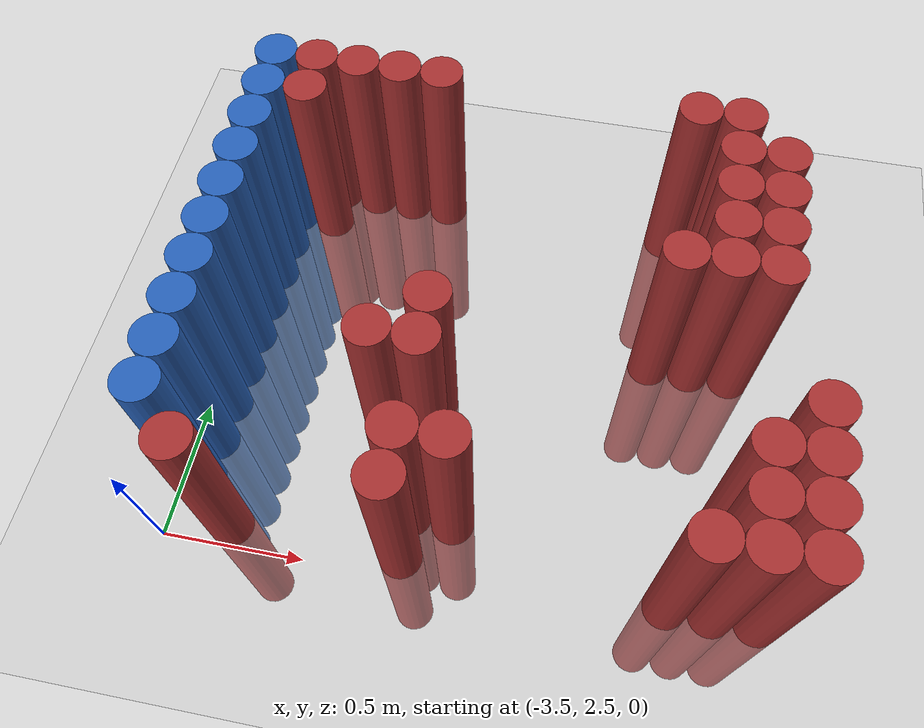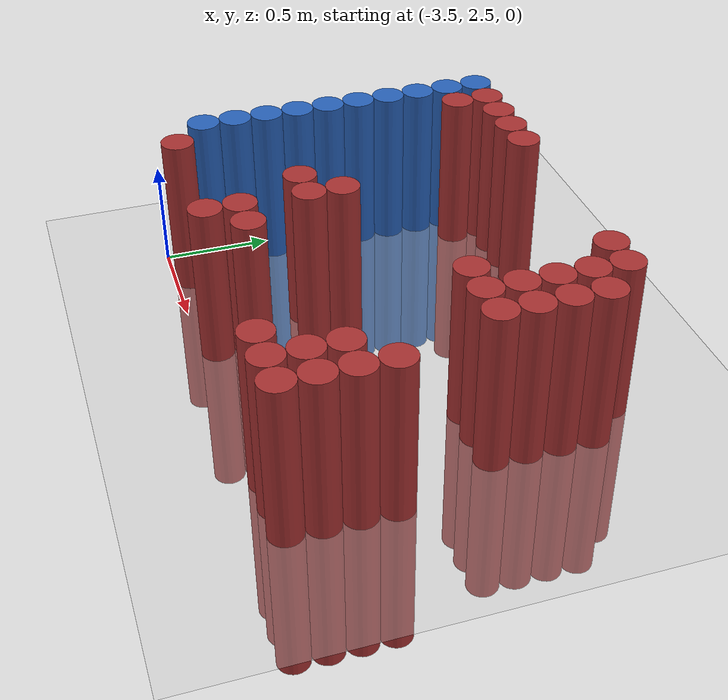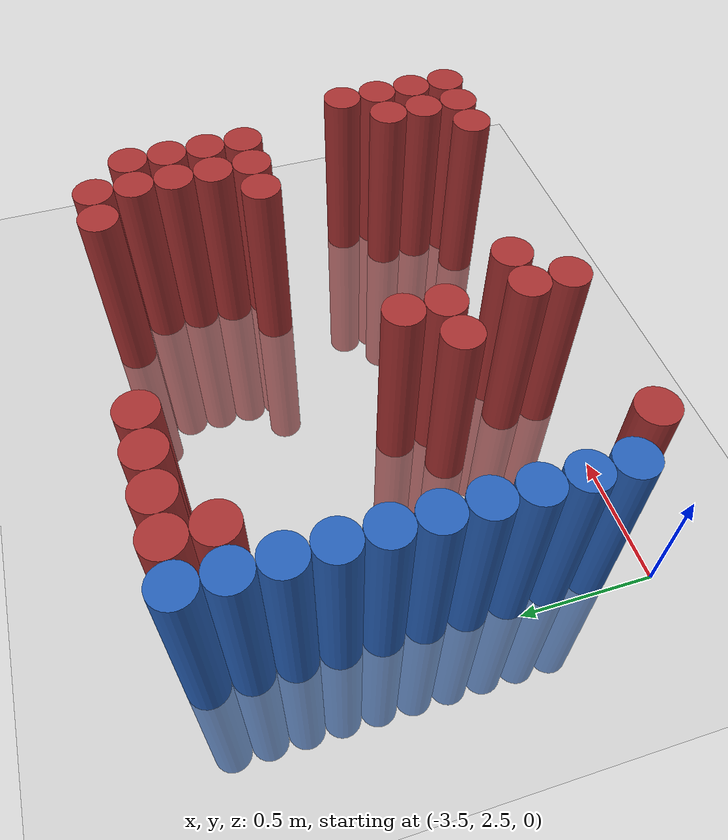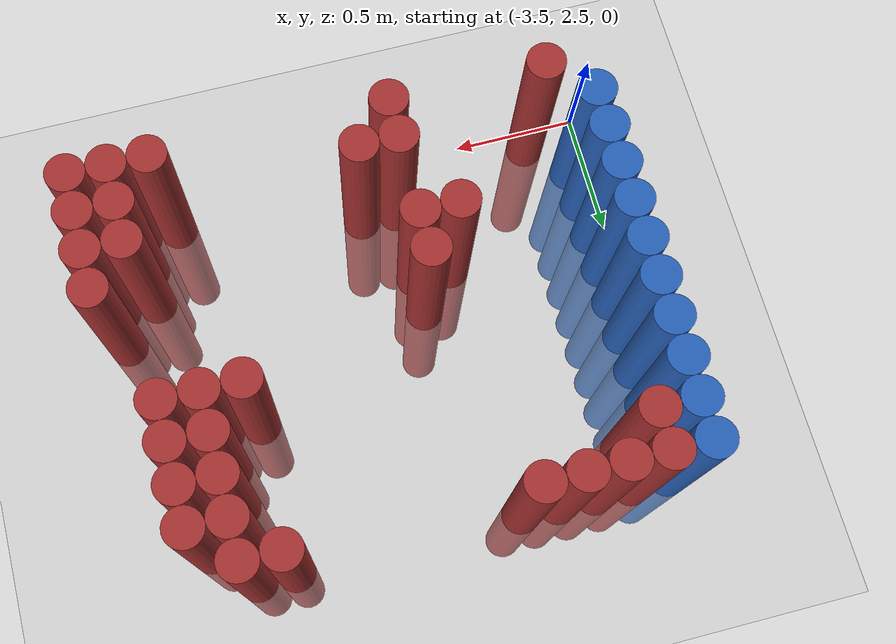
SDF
<sdf version="1.6">
 <world name="default">
  <model name="ground_plane">
   <static>1</static>
   <link name="link">
    <collision name="collision">
     <geometry><plane><normal>0 0 1</normal><size>100 100</size></plane></geometry>
     <surface><friction><ode><mu>100</mu><mu2>50</mu2></ode></friction></surface>
    </collision>
    <visual name="visual">
     <cast_shadows>0</cast_shadows>
     <geometry><plane><normal>0 0 1</normal><size>100 100</size></plane></geometry>
     <material>
      <script><uri>file://media/materials/scripts/gazebo.material</uri><name>Gazebo/Grey</name></script>
     </material>
    </visual>
   </link>
  </model>
  <model name="unit_cylinder_151">
   <static>1</static>
   <pose>-3.425000 2.725000 0.000000 0.000000 0.000000 0.000000</pose>
   <link name="link">
    <inertial>
     <mass>1</mass>
     <inertia><ixx>0.145833</ixx><ixy>0</ixy><ixz>0</ixz><iyy>0.145833</iyy><iyz>0</iyz><izz>0.125</izz></inertia>
    </inertial>
    <collision name="collision">
     <geometry><cylinder><radius>0.075000</radius><length>1.5</length></cylinder></geometry>
    </collision>
    <visual name="visual">
     <geometry><cylinder><radius>0.075000</radius><length>1.5</length></cylinder></geometry>
     <material>
      <ambient>0.152000 0.379000 0.720000 1</ambient>
      <diffuse>0.152000 0.379000 0.720000 1</diffuse>
     </material>
     <material>
      <script><name>Gazebo/Grey</name><uri>file://media/materials/scripts/gazebo.material</uri></script>
     </material>
    </visual>
   </link>
  </model>
  <model name="unit_cylinder_153">
   <static>1</static>
   <pose>-3.425000 2.875000 0.000000 0.000000 0.000000 0.000000</pose>
   <link name="link">
    <inertial>
     <mass>1</mass>
     <inertia><ixx>0.145833</ixx><ixy>0</ixy><ixz>0</ixz><iyy>0.145833</iyy><iyz>0</iyz><izz>0.125</izz></inertia>
    </inertial>
    <collision name="collision">
     <geometry><cylinder><radius>0.075000</radius><length>1.5</length></cylinder></geometry>
    </collision>
    <visual name="visual">
     <geometry><cylinder><radius>0.075000</radius><length>1.5</length></cylinder></geometry>
     <material>
      <ambient>0.152000 0.379000 0.720000 1</ambient>
      <diffuse>0.152000 0.379000 0.720000 1</diffuse>
     </material>
     <material>
      <script><name>Gazebo/Grey</name><uri>file://media/materials/scripts/gazebo.material</uri></script>
     </material>
    </visual>
   </link>
  </model>
  <model name="unit_cylinder_155">
   <static>1</static>
   <pose>-3.425000 3.025000 0.000000 0.000000 0.000000 0.000000</pose>
   <link name="link">
    <inertial>
     <mass>1</mass>
     <inertia><ixx>0.145833</ixx><ixy>0</ixy><ixz>0</ixz><iyy>0.145833</iyy><iyz>0</iyz><izz>0.125</izz></inertia>
    </inertial>
    <collision name="collision">
     <geometry><cylinder><radius>0.075000</radius><length>1.5</length></cylinder></geometry>
    </collision>
    <visual name="visual">
     <geometry><cylinder><radius>0.075000</radius><length>1.5</length></cylinder></geometry>
     <material>
      <ambient>0.152000 0.379000 0.720000 1</ambient>
      <diffuse>0.152000 0.379000 0.720000 1</diffuse>
     </material>
     <material>
      <script><name>Gazebo/Grey</name><uri>file://media/materials/scripts/gazebo.material</uri></script>
     </material>
    </visual>
   </link>
  </model>
  <model name="unit_cylinder_157">
   <static>1</static>
   <pose>-3.425000 3.175000 0.000000 0.000000 0.000000 0.000000</pose>
   <link name="link">
    <inertial>
     <mass>1</mass>
     <inertia><ixx>0.145833</ixx><ixy>0</ixy><ixz>0</ixz><iyy>0.145833</iyy><iyz>0</iyz><izz>0.125</izz></inertia>
    </inertial>
    <collision name="collision">
     <geometry><cylinder><radius>0.075000</radius><length>1.5</length></cylinder></geometry>
    </collision>
    <visual name="visual">
     <geometry><cylinder><radius>0.075000</radius><length>1.5</length></cylinder></geometry>
     <material>
      <ambient>0.152000 0.379000 0.720000 1</ambient>
      <diffuse>0.152000 0.379000 0.720000 1</diffuse>
     </material>
     <material>
      <script><name>Gazebo/Grey</name><uri>file://media/materials/scripts/gazebo.material</uri></script>
     </material>
    </visual>
   </link>
  </model>
  <model name="unit_cylinder_159">
   <static>1</static>
   <pose>-3.425000 3.325000 0.000000 0.000000 0.000000 0.000000</pose>
   <link name="link">
    <inertial>
     <mass>1</mass>
     <inertia><ixx>0.145833</ixx><ixy>0</ixy><ixz>0</ixz><iyy>0.145833</iyy><iyz>0</iyz><izz>0.125</izz></inertia>
    </inertial>
    <collision name="collision">
     <geometry><cylinder><radius>0.075000</radius><length>1.5</length></cylinder></geometry>
    </collision>
    <visual name="visual">
     <geometry><cylinder><radius>0.075000</radius><length>1.5</length></cylinder></geometry>
     <material>
      <ambient>0.152000 0.379000 0.720000 1</ambient>
      <diffuse>0.152000 0.379000 0.720000 1</diffuse>
     </material>
     <material>
      <script><name>Gazebo/Grey</name><uri>file://media/materials/scripts/gazebo.material</uri></script>
     </material>
    </visual>
   </link>
  </model>
  <model name="unit_cylinder_161">
   <static>1</static>
   <pose>-3.425000 3.475000 0.000000 0.000000 0.000000 0.000000</pose>
   <link name="link">
    <inertial>
     <mass>1</mass>
     <inertia><ixx>0.145833</ixx><ixy>0</ixy><ixz>0</ixz><iyy>0.145833</iyy><iyz>0</iyz><izz>0.125</izz></inertia>
    </inertial>
    <collision name="collision">
     <geometry><cylinder><radius>0.075000</radius><length>1.5</length></cylinder></geometry>
    </collision>
    <visual name="visual">
     <geometry><cylinder><radius>0.075000</radius><length>1.5</length></cylinder></geometry>
     <material>
      <ambient>0.152000 0.379000 0.720000 1</ambient>
      <diffuse>0.152000 0.379000 0.720000 1</diffuse>
     </material>
     <material>
      <script><name>Gazebo/Grey</name><uri>file://media/materials/scripts/gazebo.material</uri></script>
     </material>
    </visual>
   </link>
  </model>
  <model name="unit_cylinder_163">
   <static>1</static>
   <pose>-3.425000 3.625000 0.000000 0.000000 0.000000 0.000000</pose>
   <link name="link">
    <inertial>
     <mass>1</mass>
     <inertia><ixx>0.145833</ixx><ixy>0</ixy><ixz>0</ixz><iyy>0.145833</iyy><iyz>0</iyz><izz>0.125</izz></inertia>
    </inertial>
    <collision name="collision">
     <geometry><cylinder><radius>0.075000</radius><length>1.5</length></cylinder></geometry>
    </collision>
    <visual name="visual">
     <geometry><cylinder><radius>0.075000</radius><length>1.5</length></cylinder></geometry>
     <material>
      <ambient>0.152000 0.379000 0.720000 1</ambient>
      <diffuse>0.152000 0.379000 0.720000 1</diffuse>
     </material>
     <material>
      <script><name>Gazebo/Grey</name><uri>file://media/materials/scripts/gazebo.material</uri></script>
     </material>
    </visual>
   </link>
  </model>
  <model name="unit_cylinder_165">
   <static>1</static>
   <pose>-3.425000 3.775000 0.000000 0.000000 0.000000 0.000000</pose>
   <link name="link">
    <inertial>
     <mass>1</mass>
     <inertia><ixx>0.145833</ixx><ixy>0</ixy><ixz>0</ixz><iyy>0.145833</iyy><iyz>0</iyz><izz>0.125</izz></inertia>
    </inertial>
    <collision name="collision">
     <geometry><cylinder><radius>0.075000</radius><length>1.5</length></cylinder></geometry>
    </collision>
    <visual name="visual">
     <geometry><cylinder><radius>0.075000</radius><length>1.5</length></cylinder></geometry>
     <material>
      <ambient>0.152000 0.379000 0.720000 1</ambient>
      <diffuse>0.152000 0.379000 0.720000 1</diffuse>
     </material>
     <material>
      <script><name>Gazebo/Grey</name><uri>file://media/materials/scripts/gazebo.material</uri></script>
     </material>
    </visual>
   </link>
  </model>
  <model name="unit_cylinder_167">
   <static>1</static>
   <pose>-3.425000 3.925000 0.000000 0.000000 0.000000 0.000000</pose>
   <link name="link">
    <inertial>
     <mass>1</mass>
     <inertia><ixx>0.145833</ixx><ixy>0</ixy><ixz>0</ixz><iyy>0.145833</iyy><iyz>0</iyz><izz>0.125</izz></inertia>
    </inertial>
    <collision name="collision">
     <geometry><cylinder><radius>0.075000</radius><length>1.5</length></cylinder></geometry>
    </collision>
    <visual name="visual">
     <geometry><cylinder><radius>0.075000</radius><length>1.5</length></cylinder></geometry>
     <material>
      <ambient>0.152000 0.379000 0.720000 1</ambient>
      <diffuse>0.152000 0.379000 0.720000 1</diffuse>
     </material>
     <material>
      <script><name>Gazebo/Grey</name><uri>file://media/materials/scripts/gazebo.material</uri></script>
     </material>
    </visual>
   </link>
  </model>
  <model name="unit_cylinder_169">
   <static>1</static>
   <pose>-3.425000 4.075000 0.000000 0.000000 0.000000 0.000000</pose>
   <link name="link">
    <inertial>
     <mass>1</mass>
     <inertia><ixx>0.145833</ixx><ixy>0</ixy><ixz>0</ixz><iyy>0.145833</iyy><iyz>0</iyz><izz>0.125</izz></inertia>
    </inertial>
    <collision name="collision">
     <geometry><cylinder><radius>0.075000</radius><length>1.5</length></cylinder></geometry>
    </collision>
    <visual name="visual">
     <geometry><cylinder><radius>0.075000</radius><length>1.5</length></cylinder></geometry>
     <material>
      <ambient>0.152000 0.379000 0.720000 1</ambient>
      <diffuse>0.152000 0.379000 0.720000 1</diffuse>
     </material>
     <material>
      <script><name>Gazebo/Grey</name><uri>file://media/materials/scripts/gazebo.material</uri></script>
     </material>
    </visual>
   </link>
  </model>
  <model name="unit_cylinder_239">
   <static>1</static>
   <pose>-3.425000 2.725000 0.000000 0.000000 0.000000 0.000000</pose>
   <link name="link">
    <inertial>
     <mass>1</mass>
     <inertia><ixx>0.145833</ixx><ixy>0</ixy><ixz>0</ixz><iyy>0.145833</iyy><iyz>0</iyz><izz>0.125</izz></inertia>
    </inertial>
    <collision name="collision">
     <geometry><cylinder><radius>0.075000</radius><length>1.5</length></cylinder></geometry>
    </collision>
    <visual name="visual">
     <geometry><cylinder><radius>0.075000</radius><length>1.5</length></cylinder></geometry>
     <material>
      <ambient>0.152000 0.379000 0.720000 1</ambient>
      <diffuse>0.152000 0.379000 0.720000 1</diffuse>
     </material>
     <material>
      <script><name>Gazebo/Grey</name><uri>file://media/materials/scripts/gazebo.material</uri></script>
     </material>
    </visual>
   </link>
  </model>
  <model name="unit_cylinder_240">
   <static>1</static>
   <pose>-3.425000 2.875000 0.000000 0.000000 0.000000 0.000000</pose>
   <link name="link">
    <inertial>
     <mass>1</mass>
     <inertia><ixx>0.145833</ixx><ixy>0</ixy><ixz>0</ixz><iyy>0.145833</iyy><iyz>0</iyz><izz>0.125</izz></inertia>
    </inertial>
    <collision name="collision">
     <geometry><cylinder><radius>0.075000</radius><length>1.5</length></cylinder></geometry>
    </collision>
    <visual name="visual">
     <geometry><cylinder><radius>0.075000</radius><length>1.5</length></cylinder></geometry>
     <material>
      <ambient>0.152000 0.379000 0.720000 1</ambient>
      <diffuse>0.152000 0.379000 0.720000 1</diffuse>
     </material>
     <material>
      <script><name>Gazebo/Grey</name><uri>file://media/materials/scripts/gazebo.material</uri></script>
     </material>
    </visual>
   </link>
  </model>
  <model name="unit_cylinder_241">
   <static>1</static>
   <pose>-3.425000 3.025000 0.000000 0.000000 0.000000 0.000000</pose>
   <link name="link">
    <inertial>
     <mass>1</mass>
     <inertia><ixx>0.145833</ixx><ixy>0</ixy><ixz>0</ixz><iyy>0.145833</iyy><iyz>0</iyz><izz>0.125</izz></inertia>
    </inertial>
    <collision name="collision">
     <geometry><cylinder><radius>0.075000</radius><length>1.5</length></cylinder></geometry>
    </collision>
    <visual name="visual">
     <geometry><cylinder><radius>0.075000</radius><length>1.5</length></cylinder></geometry>
     <material>
      <ambient>0.152000 0.379000 0.720000 1</ambient>
      <diffuse>0.152000 0.379000 0.720000 1</diffuse>
     </material>
     <material>
      <script><name>Gazebo/Grey</name><uri>file://media/materials/scripts/gazebo.material</uri></script>
     </material>
    </visual>
   </link>
  </model>
  <model name="unit_cylinder_242">
   <static>1</static>
   <pose>-3.425000 3.175000 0.000000 0.000000 0.000000 0.000000</pose>
   <link name="link">
    <inertial>
     <mass>1</mass>
     <inertia><ixx>0.145833</ixx><ixy>0</ixy><ixz>0</ixz><iyy>0.145833</iyy><iyz>0</iyz><izz>0.125</izz></inertia>
    </inertial>
    <collision name="collision">
     <geometry><cylinder><radius>0.075000</radius><length>1.5</length></cylinder></geometry>
    </collision>
    <visual name="visual">
     <geometry><cylinder><radius>0.075000</radius><length>1.5</length></cylinder></geometry>
     <material>
      <ambient>0.152000 0.379000 0.720000 1</ambient>
      <diffuse>0.152000 0.379000 0.720000 1</diffuse>
     </material>
     <material>
      <script><name>Gazebo/Grey</name><uri>file://media/materials/scripts/gazebo.material</uri></script>
     </material>
    </visual>
   </link>
  </model>
  <model name="unit_cylinder_243">
   <static>1</static>
   <pose>-3.425000 3.325000 0.000000 0.000000 0.000000 0.000000</pose>
   <link name="link">
    <inertial>
     <mass>1</mass>
     <inertia><ixx>0.145833</ixx><ixy>0</ixy><ixz>0</ixz><iyy>0.145833</iyy><iyz>0</iyz><izz>0.125</izz></inertia>
    </inertial>
    <collision name="collision">
     <geometry><cylinder><radius>0.075000</radius><length>1.5</length></cylinder></geometry>
    </collision>
    <visual name="visual">
     <geometry><cylinder><radius>0.075000</radius><length>1.5</length></cylinder></geometry>
     <material>
      <ambient>0.152000 0.379000 0.720000 1</ambient>
      <diffuse>0.152000 0.379000 0.720000 1</diffuse>
     </material>
     <material>
      <script><name>Gazebo/Grey</name><uri>file://media/materials/scripts/gazebo.material</uri></script>
     </material>
    </visual>
   </link>
  </model>
  <model name="unit_cylinder_244">
   <static>1</static>
   <pose>-3.425000 3.475000 0.000000 0.000000 0.000000 0.000000</pose>
   <link name="link">
    <inertial>
     <mass>1</mass>
     <inertia><ixx>0.145833</ixx><ixy>0</ixy><ixz>0</ixz><iyy>0.145833</iyy><iyz>0</iyz><izz>0.125</izz></inertia>
    </inertial>
    <collision name="collision">
     <geometry><cylinder><radius>0.075000</radius><length>1.5</length></cylinder></geometry>
    </collision>
    <visual name="visual">
     <geometry><cylinder><radius>0.075000</radius><length>1.5</length></cylinder></geometry>
     <material>
      <ambient>0.152000 0.379000 0.720000 1</ambient>
      <diffuse>0.152000 0.379000 0.720000 1</diffuse>
     </material>
     <material>
      <script><name>Gazebo/Grey</name><uri>file://media/materials/scripts/gazebo.material</uri></script>
     </material>
    </visual>
   </link>
  </model>
  <model name="unit_cylinder_245">
   <static>1</static>
   <pose>-3.425000 3.625000 0.000000 0.000000 0.000000 0.000000</pose>
   <link name="link">
    <inertial>
     <mass>1</mass>
     <inertia><ixx>0.145833</ixx><ixy>0</ixy><ixz>0</ixz><iyy>0.145833</iyy><iyz>0</iyz><izz>0.125</izz></inertia>
    </inertial>
    <collision name="collision">
     <geometry><cylinder><radius>0.075000</radius><length>1.5</length></cylinder></geometry>
    </collision>
    <visual name="visual">
     <geometry><cylinder><radius>0.075000</radius><length>1.5</length></cylinder></geometry>
     <material>
      <ambient>0.152000 0.379000 0.720000 1</ambient>
      <diffuse>0.152000 0.379000 0.720000 1</diffuse>
     </material>
     <material>
      <script><name>Gazebo/Grey</name><uri>file://media/materials/scripts/gazebo.material</uri></script>
     </material>
    </visual>
   </link>
  </model>
  <model name="unit_cylinder_246">
   <static>1</static>
   <pose>-3.425000 3.775000 0.000000 0.000000 0.000000 0.000000</pose>
   <link name="link">
    <inertial>
     <mass>1</mass>
     <inertia><ixx>0.145833</ixx><ixy>0</ixy><ixz>0</ixz><iyy>0.145833</iyy><iyz>0</iyz><izz>0.125</izz></inertia>
    </inertial>
    <collision name="collision">
     <geometry><cylinder><radius>0.075000</radius><length>1.5</length></cylinder></geometry>
    </collision>
    <visual name="visual">
     <geometry><cylinder><radius>0.075000</radius><length>1.5</length></cylinder></geometry>
     <material>
      <ambient>0.152000 0.379000 0.720000 1</ambient>
      <diffuse>0.152000 0.379000 0.720000 1</diffuse>
     </material>
     <material>
      <script><name>Gazebo/Grey</name><uri>file://media/materials/scripts/gazebo.material</uri></script>
     </material>
    </visual>
   </link>
  </model>
  <model name="unit_cylinder_247">
   <static>1</static>
   <pose>-3.425000 3.925000 0.000000 0.000000 0.000000 0.000000</pose>
   <link name="link">
    <inertial>
     <mass>1</mass>
     <inertia><ixx>0.145833</ixx><ixy>0</ixy><ixz>0</ixz><iyy>0.145833</iyy><iyz>0</iyz><izz>0.125</izz></inertia>
    </inertial>
    <collision name="collision">
     <geometry><cylinder><radius>0.075000</radius><length>1.5</length></cylinder></geometry>
    </collision>
    <visual name="visual">
     <geometry><cylinder><radius>0.075000</radius><length>1.5</length></cylinder></geometry>
     <material>
      <ambient>0.152000 0.379000 0.720000 1</ambient>
      <diffuse>0.152000 0.379000 0.720000 1</diffuse>
     </material>
     <material>
      <script><name>Gazebo/Grey</name><uri>file://media/materials/scripts/gazebo.material</uri></script>
     </material>
    </visual>
   </link>
  </model>
  <model name="unit_cylinder_248">
   <static>1</static>
   <pose>-3.425000 4.075000 0.000000 0.000000 0.000000 0.000000</pose>
   <link name="link">
    <inertial>
     <mass>1</mass>
     <inertia><ixx>0.145833</ixx><ixy>0</ixy><ixz>0</ixz><iyy>0.145833</iyy><iyz>0</iyz><izz>0.125</izz></inertia>
    </inertial>
    <collision name="collision">
     <geometry><cylinder><radius>0.075000</radius><length>1.5</length></cylinder></geometry>
    </collision>
    <visual name="visual">
     <geometry><cylinder><radius>0.075000</radius><length>1.5</length></cylinder></geometry>
     <material>
      <ambient>0.152000 0.379000 0.720000 1</ambient>
      <diffuse>0.152000 0.379000 0.720000 1</diffuse>
     </material>
     <material>
      <script><name>Gazebo/Grey</name><uri>file://media/materials/scripts/gazebo.material</uri></script>
     </material>
    </visual>
   </link>
  </model>
  <model name="unit_cylinder_270">
   <static>1</static>
   <pose>-3.275000 2.575000 0.000000 0.000000 0.000000 0.000000</pose>
   <link name="link">
    <inertial>
     <mass>1</mass>
     <inertia><ixx>0.145833</ixx><ixy>0</ixy><ixz>0</ixz><iyy>0.145833</iyy><iyz>0</iyz><izz>0.125</izz></inertia>
    </inertial>
    <collision name="collision">
     <geometry><cylinder><radius>0.075000</radius><length>1.5</length></cylinder></geometry>
    </collision>
    <visual name="visual">
     <geometry><cylinder><radius>0.075000</radius><length>1.5</length></cylinder></geometry>
     <material>
      <ambient>0.648000 0.192000 0.192000 1</ambient>
      <diffuse>0.648000 0.192000 0.192000 1</diffuse>
     </material>
     <material>
      <script><name>Gazebo/Grey</name><uri>file://media/materials/scripts/gazebo.material</uri></script>
     </material>
    </visual>
   </link>
  </model>
  <model name="unit_cylinder_271">
   <static>1</static>
   <pose>-3.275000 3.925000 0.000000 0.000000 0.000000 0.000000</pose>
   <link name="link">
    <inertial>
     <mass>1</mass>
     <inertia><ixx>0.145833</ixx><ixy>0</ixy><ixz>0</ixz><iyy>0.145833</iyy><iyz>0</iyz><izz>0.125</izz></inertia>
    </inertial>
    <collision name="collision">
     <geometry><cylinder><radius>0.075000</radius><length>1.5</length></cylinder></geometry>
    </collision>
    <visual name="visual">
     <geometry><cylinder><radius>0.075000</radius><length>1.5</length></cylinder></geometry>
     <material>
      <ambient>0.648000 0.192000 0.192000 1</ambient>
      <diffuse>0.648000 0.192000 0.192000 1</diffuse>
     </material>
     <material>
      <script><name>Gazebo/Grey</name><uri>file://media/materials/scripts/gazebo.material</uri></script>
     </material>
    </visual>
   </link>
  </model>
  <model name="unit_cylinder_272">
   <static>1</static>
   <pose>-3.275000 4.075000 0.000000 0.000000 0.000000 0.000000</pose>
   <link name="link">
    <inertial>
     <mass>1</mass>
     <inertia><ixx>0.145833</ixx><ixy>0</ixy><ixz>0</ixz><iyy>0.145833</iyy><iyz>0</iyz><izz>0.125</izz></inertia>
    </inertial>
    <collision name="collision">
     <geometry><cylinder><radius>0.075000</radius><length>1.5</length></cylinder></geometry>
    </collision>
    <visual name="visual">
     <geometry><cylinder><radius>0.075000</radius><length>1.5</length></cylinder></geometry>
     <material>
      <ambient>0.648000 0.192000 0.192000 1</ambient>
      <diffuse>0.648000 0.192000 0.192000 1</diffuse>
     </material>
     <material>
      <script><name>Gazebo/Grey</name><uri>file://media/materials/scripts/gazebo.material</uri></script>
     </material>
    </visual>
   </link>
  </model>
  <model name="unit_cylinder_279">
   <static>1</static>
   <pose>-3.125000 4.075000 0.000000 0.000000 0.000000 0.000000</pose>
   <link name="link">
    <inertial>
     <mass>1</mass>
     <inertia><ixx>0.145833</ixx><ixy>0</ixy><ixz>0</ixz><iyy>0.145833</iyy><iyz>0</iyz><izz>0.125</izz></inertia>
    </inertial>
    <collision name="collision">
     <geometry><cylinder><radius>0.075000</radius><length>1.5</length></cylinder></geometry>
    </collision>
    <visual name="visual">
     <geometry><cylinder><radius>0.075000</radius><length>1.5</length></cylinder></geometry>
     <material>
      <ambient>0.648000 0.192000 0.192000 1</ambient>
      <diffuse>0.648000 0.192000 0.192000 1</diffuse>
     </material>
     <material>
      <script><name>Gazebo/Grey</name><uri>file://media/materials/scripts/gazebo.material</uri></script>
     </material>
    </visual>
   </link>
  </model>
  <model name="unit_cylinder_285">
   <static>1</static>
   <pose>-2.975000 4.075000 0.000000 0.000000 0.000000 0.000000</pose>
   <link name="link">
    <inertial>
     <mass>1</mass>
     <inertia><ixx>0.145833</ixx><ixy>0</ixy><ixz>0</ixz><iyy>0.145833</iyy><iyz>0</iyz><izz>0.125</izz></inertia>
    </inertial>
    <collision name="collision">
     <geometry><cylinder><radius>0.075000</radius><length>1.5</length></cylinder></geometry>
    </collision>
    <visual name="visual">
     <geometry><cylinder><radius>0.075000</radius><length>1.5</length></cylinder></geometry>
     <material>
      <ambient>0.648000 0.192000 0.192000 1</ambient>
      <diffuse>0.648000 0.192000 0.192000 1</diffuse>
     </material>
     <material>
      <script><name>Gazebo/Grey</name><uri>file://media/materials/scripts/gazebo.material</uri></script>
     </material>
    </visual>
   </link>
  </model>
  <model name="unit_cylinder_295">
   <static>1</static>
   <pose>-2.825000 3.025000 0.000000 0.000000 0.000000 0.000000</pose>
   <link name="link">
    <inertial>
     <mass>1</mass>
     <inertia><ixx>0.145833</ixx><ixy>0</ixy><ixz>0</ixz><iyy>0.145833</iyy><iyz>0</iyz><izz>0.125</izz></inertia>
    </inertial>
    <collision name="collision">
     <geometry><cylinder><radius>0.075000</radius><length>1.5</length></cylinder></geometry>
    </collision>
    <visual name="visual">
     <geometry><cylinder><radius>0.075000</radius><length>1.5</length></cylinder></geometry>
     <material>
      <ambient>0.648000 0.192000 0.192000 1</ambient>
      <diffuse>0.648000 0.192000 0.192000 1</diffuse>
     </material>
     <material>
      <script><name>Gazebo/Grey</name><uri>file://media/materials/scripts/gazebo.material</uri></script>
     </material>
    </visual>
   </link>
  </model>
  <model name="unit_cylinder_296">
   <static>1</static>
   <pose>-2.825000 4.075000 0.000000 0.000000 0.000000 0.000000</pose>
   <link name="link">
    <inertial>
     <mass>1</mass>
     <inertia><ixx>0.145833</ixx><ixy>0</ixy><ixz>0</ixz><iyy>0.145833</iyy><iyz>0</iyz><izz>0.125</izz></inertia>
    </inertial>
    <collision name="collision">
     <geometry><cylinder><radius>0.075000</radius><length>1.5</length></cylinder></geometry>
    </collision>
    <visual name="visual">
     <geometry><cylinder><radius>0.075000</radius><length>1.5</length></cylinder></geometry>
     <material>
      <ambient>0.648000 0.192000 0.192000 1</ambient>
      <diffuse>0.648000 0.192000 0.192000 1</diffuse>
     </material>
     <material>
      <script><name>Gazebo/Grey</name><uri>file://media/materials/scripts/gazebo.material</uri></script>
     </material>
    </visual>
   </link>
  </model>
  <model name="unit_cylinder_301">
   <static>1</static>
   <pose>-2.675000 2.575000 0.000000 0.000000 0.000000 0.000000</pose>
   <link name="link">
    <inertial>
     <mass>1</mass>
     <inertia><ixx>0.145833</ixx><ixy>0</ixy><ixz>0</ixz><iyy>0.145833</iyy><iyz>0</iyz><izz>0.125</izz></inertia>
    </inertial>
    <collision name="collision">
     <geometry><cylinder><radius>0.075000</radius><length>1.5</length></cylinder></geometry>
    </collision>
    <visual name="visual">
     <geometry><cylinder><radius>0.075000</radius><length>1.5</length></cylinder></geometry>
     <material>
      <ambient>0.648000 0.192000 0.192000 1</ambient>
      <diffuse>0.648000 0.192000 0.192000 1</diffuse>
     </material>
     <material>
      <script><name>Gazebo/Grey</name><uri>file://media/materials/scripts/gazebo.material</uri></script>
     </material>
    </visual>
   </link>
  </model>
  <model name="unit_cylinder_302">
   <static>1</static>
   <pose>-2.675000 2.725000 0.000000 0.000000 0.000000 0.000000</pose>
   <link name="link">
    <inertial>
     <mass>1</mass>
     <inertia><ixx>0.145833</ixx><ixy>0</ixy><ixz>0</ixz><iyy>0.145833</iyy><iyz>0</iyz><izz>0.125</izz></inertia>
    </inertial>
    <collision name="collision">
     <geometry><cylinder><radius>0.075000</radius><length>1.5</length></cylinder></geometry>
    </collision>
    <visual name="visual">
     <geometry><cylinder><radius>0.075000</radius><length>1.5</length></cylinder></geometry>
     <material>
      <ambient>0.648000 0.192000 0.192000 1</ambient>
      <diffuse>0.648000 0.192000 0.192000 1</diffuse>
     </material>
     <material>
      <script><name>Gazebo/Grey</name><uri>file://media/materials/scripts/gazebo.material</uri></script>
     </material>
    </visual>
   </link>
  </model>
  <model name="unit_cylinder_303">
   <static>1</static>
   <pose>-2.675000 3.025000 0.000000 0.000000 0.000000 0.000000</pose>
   <link name="link">
    <inertial>
     <mass>1</mass>
     <inertia><ixx>0.145833</ixx><ixy>0</ixy><ixz>0</ixz><iyy>0.145833</iyy><iyz>0</iyz><izz>0.125</izz></inertia>
    </inertial>
    <collision name="collision">
     <geometry><cylinder><radius>0.075000</radius><length>1.5</length></cylinder></geometry>
    </collision>
    <visual name="visual">
     <geometry><cylinder><radius>0.075000</radius><length>1.5</length></cylinder></geometry>
     <material>
      <ambient>0.648000 0.192000 0.192000 1</ambient>
      <diffuse>0.648000 0.192000 0.192000 1</diffuse>
     </material>
     <material>
      <script><name>Gazebo/Grey</name><uri>file://media/materials/scripts/gazebo.material</uri></script>
     </material>
    </visual>
   </link>
  </model>
  <model name="unit_cylinder_304">
   <static>1</static>
   <pose>-2.675000 3.175000 0.000000 0.000000 0.000000 0.000000</pose>
   <link name="link">
    <inertial>
     <mass>1</mass>
     <inertia><ixx>0.145833</ixx><ixy>0</ixy><ixz>0</ixz><iyy>0.145833</iyy><iyz>0</iyz><izz>0.125</izz></inertia>
    </inertial>
    <collision name="collision">
     <geometry><cylinder><radius>0.075000</radius><length>1.5</length></cylinder></geometry>
    </collision>
    <visual name="visual">
     <geometry><cylinder><radius>0.075000</radius><length>1.5</length></cylinder></geometry>
     <material>
      <ambient>0.648000 0.192000 0.192000 1</ambient>
      <diffuse>0.648000 0.192000 0.192000 1</diffuse>
     </material>
     <material>
      <script><name>Gazebo/Grey</name><uri>file://media/materials/scripts/gazebo.material</uri></script>
     </material>
    </visual>
   </link>
  </model>
  <model name="unit_cylinder_306">
   <static>1</static>
   <pose>-2.525000 2.725000 0.000000 0.000000 0.000000 0.000000</pose>
   <link name="link">
    <inertial>
     <mass>1</mass>
     <inertia><ixx>0.145833</ixx><ixy>0</ixy><ixz>0</ixz><iyy>0.145833</iyy><iyz>0</iyz><izz>0.125</izz></inertia>
    </inertial>
    <collision name="collision">
     <geometry><cylinder><radius>0.075000</radius><length>1.5</length></cylinder></geometry>
    </collision>
    <visual name="visual">
     <geometry><cylinder><radius>0.075000</radius><length>1.5</length></cylinder></geometry>
     <material>
      <ambient>0.648000 0.192000 0.192000 1</ambient>
      <diffuse>0.648000 0.192000 0.192000 1</diffuse>
     </material>
     <material>
      <script><name>Gazebo/Grey</name><uri>file://media/materials/scripts/gazebo.material</uri></script>
     </material>
    </visual>
   </link>
  </model>
  <model name="unit_cylinder_318">
   <static>1</static>
   <pose>-1.925000 3.475000 0.000000 0.000000 0.000000 0.000000</pose>
   <link name="link">
    <inertial>
     <mass>1</mass>
     <inertia><ixx>0.145833</ixx><ixy>0</ixy><ixz>0</ixz><iyy>0.145833</iyy><iyz>0</iyz><izz>0.125</izz></inertia>
    </inertial>
    <collision name="collision">
     <geometry><cylinder><radius>0.075000</radius><length>1.5</length></cylinder></geometry>
    </collision>
    <visual name="visual">
     <geometry><cylinder><radius>0.075000</radius><length>1.5</length></cylinder></geometry>
     <material>
      <ambient>0.648000 0.192000 0.192000 1</ambient>
      <diffuse>0.648000 0.192000 0.192000 1</diffuse>
     </material>
     <material>
      <script><name>Gazebo/Grey</name><uri>file://media/materials/scripts/gazebo.material</uri></script>
     </material>
    </visual>
   </link>
  </model>
  <model name="unit_cylinder_319">
   <static>1</static>
   <pose>-1.925000 4.075000 0.000000 0.000000 0.000000 0.000000</pose>
   <link name="link">
    <inertial>
     <mass>1</mass>
     <inertia><ixx>0.145833</ixx><ixy>0</ixy><ixz>0</ixz><iyy>0.145833</iyy><iyz>0</iyz><izz>0.125</izz></inertia>
    </inertial>
    <collision name="collision">
     <geometry><cylinder><radius>0.075000</radius><length>1.5</length></cylinder></geometry>
    </collision>
    <visual name="visual">
     <geometry><cylinder><radius>0.075000</radius><length>1.5</length></cylinder></geometry>
     <material>
      <ambient>0.648000 0.192000 0.192000 1</ambient>
      <diffuse>0.648000 0.192000 0.192000 1</diffuse>
     </material>
     <material>
      <script><name>Gazebo/Grey</name><uri>file://media/materials/scripts/gazebo.material</uri></script>
     </material>
    </visual>
   </link>
  </model>
  <model name="unit_cylinder_327">
   <static>1</static>
   <pose>-1.775000 2.575000 0.000000 0.000000 0.000000 0.000000</pose>
   <link name="link">
    <inertial>
     <mass>1</mass>
     <inertia><ixx>0.145833</ixx><ixy>0</ixy><ixz>0</ixz><iyy>0.145833</iyy><iyz>0</iyz><izz>0.125</izz></inertia>
    </inertial>
    <collision name="collision">
     <geometry><cylinder><radius>0.075000</radius><length>1.5</length></cylinder></geometry>
    </collision>
    <visual name="visual">
     <geometry><cylinder><radius>0.075000</radius><length>1.5</length></cylinder></geometry>
     <material>
      <ambient>0.648000 0.192000 0.192000 1</ambient>
      <diffuse>0.648000 0.192000 0.192000 1</diffuse>
     </material>
     <material>
      <script><name>Gazebo/Grey</name><uri>file://media/materials/scripts/gazebo.material</uri></script>
     </material>
    </visual>
   </link>
  </model>
  <model name="unit_cylinder_328">
   <static>1</static>
   <pose>-1.775000 3.475000 0.000000 0.000000 0.000000 0.000000</pose>
   <link name="link">
    <inertial>
     <mass>1</mass>
     <inertia><ixx>0.145833</ixx><ixy>0</ixy><ixz>0</ixz><iyy>0.145833</iyy><iyz>0</iyz><izz>0.125</izz></inertia>
    </inertial>
    <collision name="collision">
     <geometry><cylinder><radius>0.075000</radius><length>1.5</length></cylinder></geometry>
    </collision>
    <visual name="visual">
     <geometry><cylinder><radius>0.075000</radius><length>1.5</length></cylinder></geometry>
     <material>
      <ambient>0.648000 0.192000 0.192000 1</ambient>
      <diffuse>0.648000 0.192000 0.192000 1</diffuse>
     </material>
     <material>
      <script><name>Gazebo/Grey</name><uri>file://media/materials/scripts/gazebo.material</uri></script>
     </material>
    </visual>
   </link>
  </model>
  <model name="unit_cylinder_329">
   <static>1</static>
   <pose>-1.775000 3.625000 0.000000 0.000000 0.000000 0.000000</pose>
   <link name="link">
    <inertial>
     <mass>1</mass>
     <inertia><ixx>0.145833</ixx><ixy>0</ixy><ixz>0</ixz><iyy>0.145833</iyy><iyz>0</iyz><izz>0.125</izz></inertia>
    </inertial>
    <collision name="collision">
     <geometry><cylinder><radius>0.075000</radius><length>1.5</length></cylinder></geometry>
    </collision>
    <visual name="visual">
     <geometry><cylinder><radius>0.075000</radius><length>1.5</length></cylinder></geometry>
     <material>
      <ambient>0.648000 0.192000 0.192000 1</ambient>
      <diffuse>0.648000 0.192000 0.192000 1</diffuse>
     </material>
     <material>
      <script><name>Gazebo/Grey</name><uri>file://media/materials/scripts/gazebo.material</uri></script>
     </material>
    </visual>
   </link>
  </model>
  <model name="unit_cylinder_330">
   <static>1</static>
   <pose>-1.775000 3.775000 0.000000 0.000000 0.000000 0.000000</pose>
   <link name="link">
    <inertial>
     <mass>1</mass>
     <inertia><ixx>0.145833</ixx><ixy>0</ixy><ixz>0</ixz><iyy>0.145833</iyy><iyz>0</iyz><izz>0.125</izz></inertia>
    </inertial>
    <collision name="collision">
     <geometry><cylinder><radius>0.075000</radius><length>1.5</length></cylinder></geometry>
    </collision>
    <visual name="visual">
     <geometry><cylinder><radius>0.075000</radius><length>1.5</length></cylinder></geometry>
     <material>
      <ambient>0.648000 0.192000 0.192000 1</ambient>
      <diffuse>0.648000 0.192000 0.192000 1</diffuse>
     </material>
     <material>
      <script><name>Gazebo/Grey</name><uri>file://media/materials/scripts/gazebo.material</uri></script>
     </material>
    </visual>
   </link>
  </model>
  <model name="unit_cylinder_331">
   <static>1</static>
   <pose>-1.775000 3.925000 0.000000 0.000000 0.000000 0.000000</pose>
   <link name="link">
    <inertial>
     <mass>1</mass>
     <inertia><ixx>0.145833</ixx><ixy>0</ixy><ixz>0</ixz><iyy>0.145833</iyy><iyz>0</iyz><izz>0.125</izz></inertia>
    </inertial>
    <collision name="collision">
     <geometry><cylinder><radius>0.075000</radius><length>1.5</length></cylinder></geometry>
    </collision>
    <visual name="visual">
     <geometry><cylinder><radius>0.075000</radius><length>1.5</length></cylinder></geometry>
     <material>
      <ambient>0.648000 0.192000 0.192000 1</ambient>
      <diffuse>0.648000 0.192000 0.192000 1</diffuse>
     </material>
     <material>
      <script><name>Gazebo/Grey</name><uri>file://media/materials/scripts/gazebo.material</uri></script>
     </material>
    </visual>
   </link>
  </model>
  <model name="unit_cylinder_332">
   <static>1</static>
   <pose>-1.775000 4.075000 0.000000 0.000000 0.000000 0.000000</pose>
   <link name="link">
    <inertial>
     <mass>1</mass>
     <inertia><ixx>0.145833</ixx><ixy>0</ixy><ixz>0</ixz><iyy>0.145833</iyy><iyz>0</iyz><izz>0.125</izz></inertia>
    </inertial>
    <collision name="collision">
     <geometry><cylinder><radius>0.075000</radius><length>1.5</length></cylinder></geometry>
    </collision>
    <visual name="visual">
     <geometry><cylinder><radius>0.075000</radius><length>1.5</length></cylinder></geometry>
     <material>
      <ambient>0.648000 0.192000 0.192000 1</ambient>
      <diffuse>0.648000 0.192000 0.192000 1</diffuse>
     </material>
     <material>
      <script><name>Gazebo/Grey</name><uri>file://media/materials/scripts/gazebo.material</uri></script>
     </material>
    </visual>
   </link>
  </model>
  <model name="unit_cylinder_339">
   <static>1</static>
   <pose>-1.625000 2.575000 0.000000 0.000000 0.000000 0.000000</pose>
   <link name="link">
    <inertial>
     <mass>1</mass>
     <inertia><ixx>0.145833</ixx><ixy>0</ixy><ixz>0</ixz><iyy>0.145833</iyy><iyz>0</iyz><izz>0.125</izz></inertia>
    </inertial>
    <collision name="collision">
     <geometry><cylinder><radius>0.075000</radius><length>1.5</length></cylinder></geometry>
    </collision>
    <visual name="visual">
     <geometry><cylinder><radius>0.075000</radius><length>1.5</length></cylinder></geometry>
     <material>
      <ambient>0.648000 0.192000 0.192000 1</ambient>
      <diffuse>0.648000 0.192000 0.192000 1</diffuse>
     </material>
     <material>
      <script><name>Gazebo/Grey</name><uri>file://media/materials/scripts/gazebo.material</uri></script>
     </material>
    </visual>
   </link>
  </model>
  <model name="unit_cylinder_340">
   <static>1</static>
   <pose>-1.625000 2.725000 0.000000 0.000000 0.000000 0.000000</pose>
   <link name="link">
    <inertial>
     <mass>1</mass>
     <inertia><ixx>0.145833</ixx><ixy>0</ixy><ixz>0</ixz><iyy>0.145833</iyy><iyz>0</iyz><izz>0.125</izz></inertia>
    </inertial>
    <collision name="collision">
     <geometry><cylinder><radius>0.075000</radius><length>1.5</length></cylinder></geometry>
    </collision>
    <visual name="visual">
     <geometry><cylinder><radius>0.075000</radius><length>1.5</length></cylinder></geometry>
     <material>
      <ambient>0.648000 0.192000 0.192000 1</ambient>
      <diffuse>0.648000 0.192000 0.192000 1</diffuse>
     </material>
     <material>
      <script><name>Gazebo/Grey</name><uri>file://media/materials/scripts/gazebo.material</uri></script>
     </material>
    </visual>
   </link>
  </model>
  <model name="unit_cylinder_341">
   <static>1</static>
   <pose>-1.625000 2.875000 0.000000 0.000000 0.000000 0.000000</pose>
   <link name="link">
    <inertial>
     <mass>1</mass>
     <inertia><ixx>0.145833</ixx><ixy>0</ixy><ixz>0</ixz><iyy>0.145833</iyy><iyz>0</iyz><izz>0.125</izz></inertia>
    </inertial>
    <collision name="collision">
     <geometry><cylinder><radius>0.075000</radius><length>1.5</length></cylinder></geometry>
    </collision>
    <visual name="visual">
     <geometry><cylinder><radius>0.075000</radius><length>1.5</length></cylinder></geometry>
     <material>
      <ambient>0.648000 0.192000 0.192000 1</ambient>
      <diffuse>0.648000 0.192000 0.192000 1</diffuse>
     </material>
     <material>
      <script><name>Gazebo/Grey</name><uri>file://media/materials/scripts/gazebo.material</uri></script>
     </material>
    </visual>
   </link>
  </model>
  <model name="unit_cylinder_342">
   <static>1</static>
   <pose>-1.625000 3.475000 0.000000 0.000000 0.000000 0.000000</pose>
   <link name="link">
    <inertial>
     <mass>1</mass>
     <inertia><ixx>0.145833</ixx><ixy>0</ixy><ixz>0</ixz><iyy>0.145833</iyy><iyz>0</iyz><izz>0.125</izz></inertia>
    </inertial>
    <collision name="collision">
     <geometry><cylinder><radius>0.075000</radius><length>1.5</length></cylinder></geometry>
    </collision>
    <visual name="visual">
     <geometry><cylinder><radius>0.075000</radius><length>1.5</length></cylinder></geometry>
     <material>
      <ambient>0.648000 0.192000 0.192000 1</ambient>
      <diffuse>0.648000 0.192000 0.192000 1</diffuse>
     </material>
     <material>
      <script><name>Gazebo/Grey</name><uri>file://media/materials/scripts/gazebo.material</uri></script>
     </material>
    </visual>
   </link>
  </model>
  <model name="unit_cylinder_343">
   <static>1</static>
   <pose>-1.625000 3.625000 0.000000 0.000000 0.000000 0.000000</pose>
   <link name="link">
    <inertial>
     <mass>1</mass>
     <inertia><ixx>0.145833</ixx><ixy>0</ixy><ixz>0</ixz><iyy>0.145833</iyy><iyz>0</iyz><izz>0.125</izz></inertia>
    </inertial>
    <collision name="collision">
     <geometry><cylinder><radius>0.075000</radius><length>1.5</length></cylinder></geometry>
    </collision>
    <visual name="visual">
     <geometry><cylinder><radius>0.075000</radius><length>1.5</length></cylinder></geometry>
     <material>
      <ambient>0.648000 0.192000 0.192000 1</ambient>
      <diffuse>0.648000 0.192000 0.192000 1</diffuse>
     </material>
     <material>
      <script><name>Gazebo/Grey</name><uri>file://media/materials/scripts/gazebo.material</uri></script>
     </material>
    </visual>
   </link>
  </model>
  <model name="unit_cylinder_344">
   <static>1</static>
   <pose>-1.625000 3.775000 0.000000 0.000000 0.000000 0.000000</pose>
   <link name="link">
    <inertial>
     <mass>1</mass>
     <inertia><ixx>0.145833</ixx><ixy>0</ixy><ixz>0</ixz><iyy>0.145833</iyy><iyz>0</iyz><izz>0.125</izz></inertia>
    </inertial>
    <collision name="collision">
     <geometry><cylinder><radius>0.075000</radius><length>1.5</length></cylinder></geometry>
    </collision>
    <visual name="visual">
     <geometry><cylinder><radius>0.075000</radius><length>1.5</length></cylinder></geometry>
     <material>
      <ambient>0.648000 0.192000 0.192000 1</ambient>
      <diffuse>0.648000 0.192000 0.192000 1</diffuse>
     </material>
     <material>
      <script><name>Gazebo/Grey</name><uri>file://media/materials/scripts/gazebo.material</uri></script>
     </material>
    </visual>
   </link>
  </model>
  <model name="unit_cylinder_345">
   <static>1</static>
   <pose>-1.625000 3.925000 0.000000 0.000000 0.000000 0.000000</pose>
   <link name="link">
    <inertial>
     <mass>1</mass>
     <inertia><ixx>0.145833</ixx><ixy>0</ixy><ixz>0</ixz><iyy>0.145833</iyy><iyz>0</iyz><izz>0.125</izz></inertia>
    </inertial>
    <collision name="collision">
     <geometry><cylinder><radius>0.075000</radius><length>1.5</length></cylinder></geometry>
    </collision>
    <visual name="visual">
     <geometry><cylinder><radius>0.075000</radius><length>1.5</length></cylinder></geometry>
     <material>
      <ambient>0.648000 0.192000 0.192000 1</ambient>
      <diffuse>0.648000 0.192000 0.192000 1</diffuse>
     </material>
     <material>
      <script><name>Gazebo/Grey</name><uri>file://media/materials/scripts/gazebo.material</uri></script>
     </material>
    </visual>
   </link>
  </model>
  <model name="unit_cylinder_347">
   <static>1</static>
   <pose>-1.475000 2.575000 0.000000 0.000000 0.000000 0.000000</pose>
   <link name="link">
    <inertial>
     <mass>1</mass>
     <inertia><ixx>0.145833</ixx><ixy>0</ixy><ixz>0</ixz><iyy>0.145833</iyy><iyz>0</iyz><izz>0.125</izz></inertia>
    </inertial>
    <collision name="collision">
     <geometry><cylinder><radius>0.075000</radius><length>1.5</length></cylinder></geometry>
    </collision>
    <visual name="visual">
     <geometry><cylinder><radius>0.075000</radius><length>1.5</length></cylinder></geometry>
     <material>
      <ambient>0.648000 0.192000 0.192000 1</ambient>
      <diffuse>0.648000 0.192000 0.192000 1</diffuse>
     </material>
     <material>
      <script><name>Gazebo/Grey</name><uri>file://media/materials/scripts/gazebo.material</uri></script>
     </material>
    </visual>
   </link>
  </model>
  <model name="unit_cylinder_348">
   <static>1</static>
   <pose>-1.475000 2.725000 0.000000 0.000000 0.000000 0.000000</pose>
   <link name="link">
    <inertial>
     <mass>1</mass>
     <inertia><ixx>0.145833</ixx><ixy>0</ixy><ixz>0</ixz><iyy>0.145833</iyy><iyz>0</iyz><izz>0.125</izz></inertia>
    </inertial>
    <collision name="collision">
     <geometry><cylinder><radius>0.075000</radius><length>1.5</length></cylinder></geometry>
    </collision>
    <visual name="visual">
     <geometry><cylinder><radius>0.075000</radius><length>1.5</length></cylinder></geometry>
     <material>
      <ambient>0.648000 0.192000 0.192000 1</ambient>
      <diffuse>0.648000 0.192000 0.192000 1</diffuse>
     </material>
     <material>
      <script><name>Gazebo/Grey</name><uri>file://media/materials/scripts/gazebo.material</uri></script>
     </material>
    </visual>
   </link>
  </model>
  <model name="unit_cylinder_349">
   <static>1</static>
   <pose>-1.475000 2.875000 0.000000 0.000000 0.000000 0.000000</pose>
   <link name="link">
    <inertial>
     <mass>1</mass>
     <inertia><ixx>0.145833</ixx><ixy>0</ixy><ixz>0</ixz><iyy>0.145833</iyy><iyz>0</iyz><izz>0.125</izz></inertia>
    </inertial>
    <collision name="collision">
     <geometry><cylinder><radius>0.075000</radius><length>1.5</length></cylinder></geometry>
    </collision>
    <visual name="visual">
     <geometry><cylinder><radius>0.075000</radius><length>1.5</length></cylinder></geometry>
     <material>
      <ambient>0.648000 0.192000 0.192000 1</ambient>
      <diffuse>0.648000 0.192000 0.192000 1</diffuse>
     </material>
     <material>
      <script><name>Gazebo/Grey</name><uri>file://media/materials/scripts/gazebo.material</uri></script>
     </material>
    </visual>
   </link>
  </model>
  <model name="unit_cylinder_350">
   <static>1</static>
   <pose>-1.475000 3.025000 0.000000 0.000000 0.000000 0.000000</pose>
   <link name="link">
    <inertial>
     <mass>1</mass>
     <inertia><ixx>0.145833</ixx><ixy>0</ixy><ixz>0</ixz><iyy>0.145833</iyy><iyz>0</iyz><izz>0.125</izz></inertia>
    </inertial>
    <collision name="collision">
     <geometry><cylinder><radius>0.075000</radius><length>1.5</length></cylinder></geometry>
    </collision>
    <visual name="visual">
     <geometry><cylinder><radius>0.075000</radius><length>1.5</length></cylinder></geometry>
     <material>
      <ambient>0.648000 0.192000 0.192000 1</ambient>
      <diffuse>0.648000 0.192000 0.192000 1</diffuse>
     </material>
     <material>
      <script><name>Gazebo/Grey</name><uri>file://media/materials/scripts/gazebo.material</uri></script>
     </material>
    </visual>
   </link>
  </model>
 </world>
</sdf>
